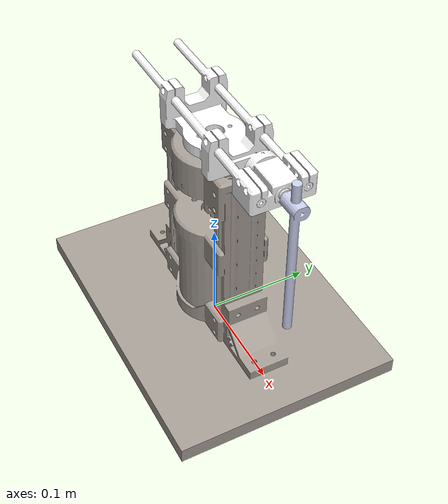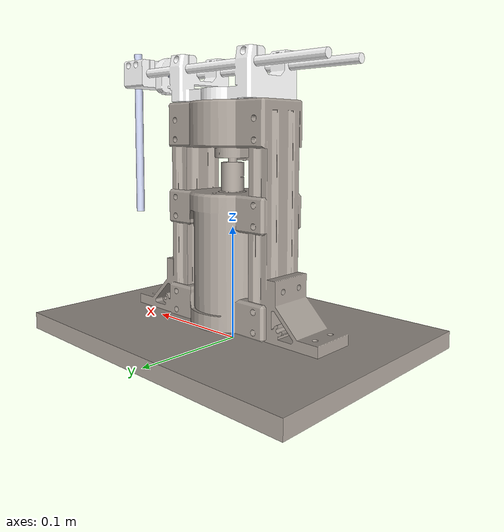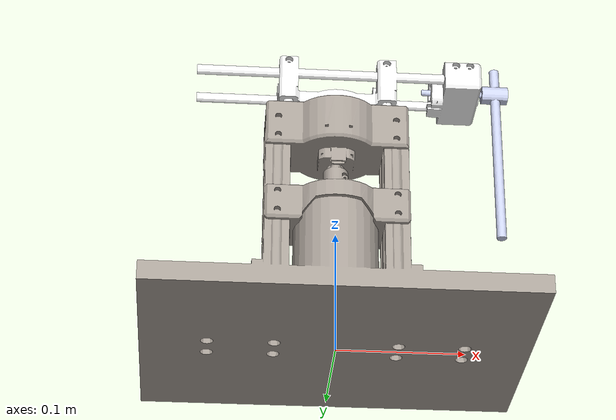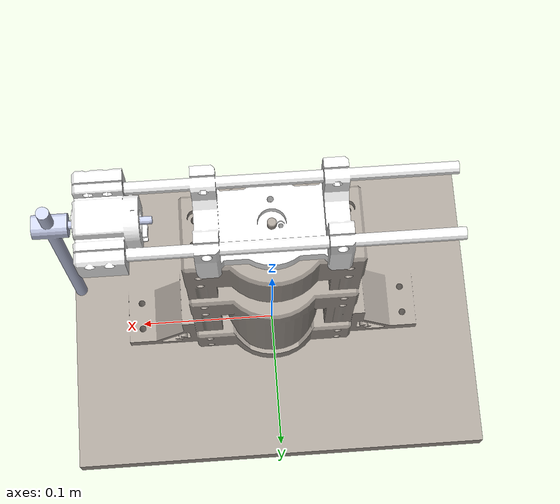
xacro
<?xml version="1.0" encoding="utf-8"?>
<robot name="Rotary_Inverted_Pendulum" xmlns:xacro="http://www.ros.org/wiki/xacro">

  <!-- Base Link -->
  <link name="base_link">
    <inertial>
      <origin xyz="0.00019503 -1.6785e-06 0.019191" rpy="0 0 0"/>
      <mass value="8.7934"/>
      <inertia
        ixx="0.03296"
        ixy="-1.2953e-08"
        ixz="1.3278e-09"
        iyy="0.059793"
        iyz="6.8808e-08"
        izz="0.090142"/>
    </inertial>
    <visual>
      <origin xyz="0 0 0" rpy="0 0 0"/>
      <geometry>
        <mesh filename="package://invpendulum_description/meshes/base_link.STL"/>
      </geometry>
      <material name="gray">
        <color rgba="0.65098 0.61961 0.58824 1"/>
      </material>
    </visual>
    <collision>
      <origin xyz="0 0 0" rpy="0 0 0"/>
      <geometry>
        <mesh filename="package://invpendulum_description/meshes/base_link.STL"/>
      </geometry>
    </collision>
  </link>

  <!-- Arm Link -->
  <link name="Arm_Link1">
    <inertial>
      <origin xyz="0.0191189780582279 -2.13351893908753e-06 0.0126487945771829" rpy="0 0 0"/>
      <mass value="0.215027242047406"/>
      <inertia
        ixx="4.4776241646878e-05"
        ixy="8.80683920929371e-10"
        ixz="1.99972176522499e-09"
        iyy="0.000234783071150826"
        iyz="-4.06419213981252e-09"
        izz="0.000267396198485261"/>
    </inertial>
    <visual>
      <origin xyz="0 0 0" rpy="0 0 0"/>
      <geometry>
        <mesh filename="package://invpendulum_description/meshes/Arm_Link1.STL"/>
      </geometry>
      <material name="white">
        <color rgba="1 1 1 1"/>
      </material>
    </visual>
    <collision>
      <origin xyz="0 0 0" rpy="0 0 0"/>
      <geometry>
        <mesh filename="package://invpendulum_description/meshes/Arm_Link1.STL"/>
      </geometry>
    </collision>
  </link>

  <!-- Joint between base and arm -->
  <joint name="Rev_Arm" type="continuous">
    <origin xyz="0.0002 0 0.212" rpy="0 0 0"/>
    <parent link="base_link"/>
    <child link="Arm_Link1"/>
    <axis xyz="0 0 1"/>
  </joint>

  <!-- Pendulum Link -->
  <link name="Pendulum_Link2">
    <inertial>
      <origin xyz="0.038074 3.9254e-10 0.0081922" rpy="0 0 0"/>
      <mass value="0.011664"/>
      <inertia
        ixx="1.3411e-06"
        ixy="-5.6723e-14"
        ixz="-5.8423e-13"
        iyy="1.7968e-05"
        iyz="-2.8301e-14"
        izz="1.6783e-05"/>
    </inertial>
    <visual>
      <origin xyz="0 0 0" rpy="0 0 0"/>
      <geometry>
        <mesh filename="package://invpendulum_description/meshes/Pendulum_Link2.STL"/>
      </geometry>
      <material name="lightblue">
        <color rgba="0.79216 0.81961 0.93333 1"/>
      </material>
    </visual>
    <collision>
      <origin xyz="0 0 0" rpy="0 0 0"/>
      <geometry>
        <mesh filename="package://invpendulum_description/meshes/Pendulum_Link2.STL"/>
      </geometry>
    </collision>
  </link>

  <!-- Joint between arm and pendulum -->
  <joint name="Rev_Pendulum" type="continuous">
    <origin xyz="0.1215 0 0.0255" rpy="0 ${pi/2} 0"/>
    <parent link="Arm_Link1"/>
    <child link="Pendulum_Link2"/>
    <axis xyz="0 0 1"/>
  </joint>

</robot>
